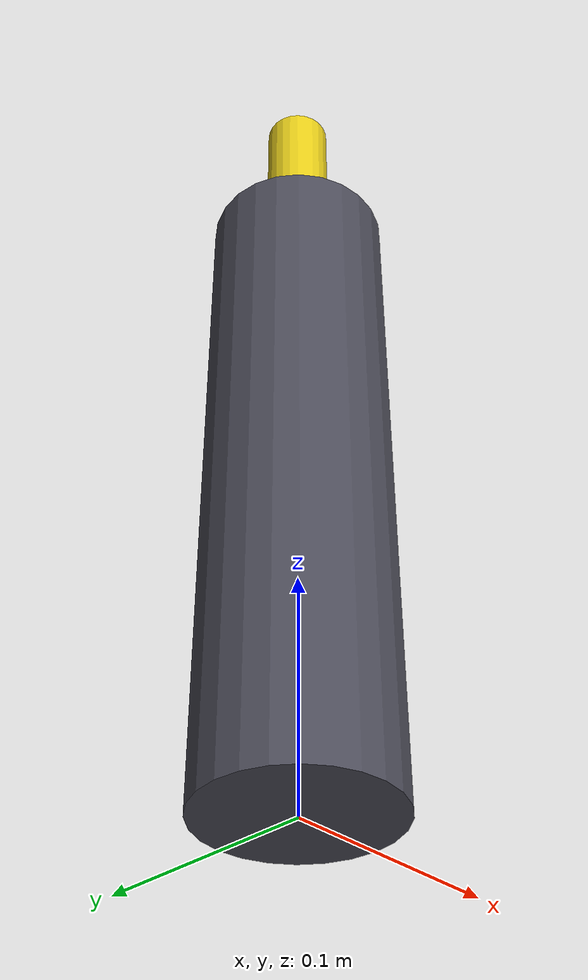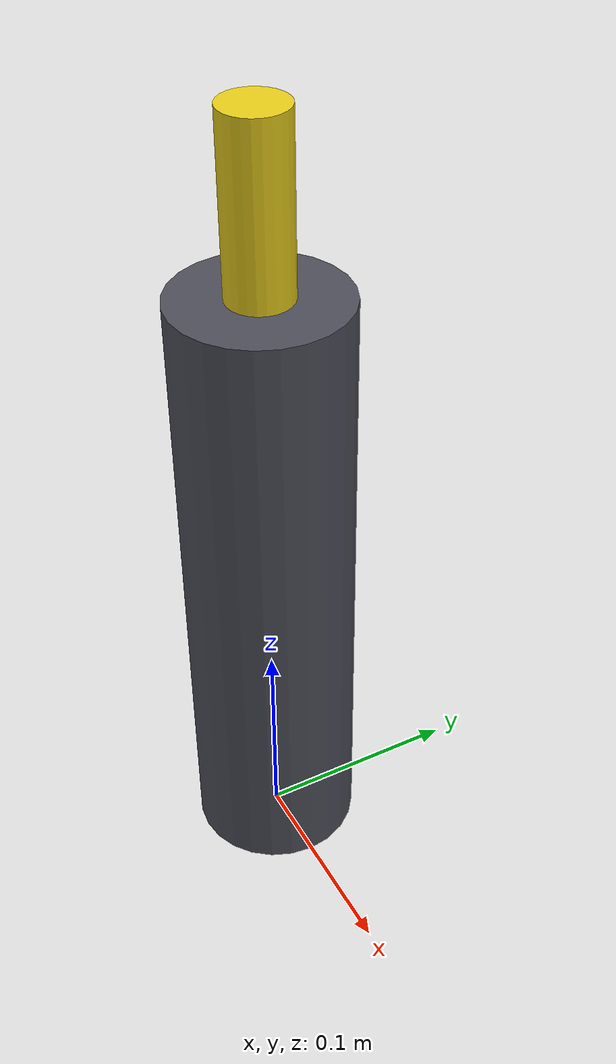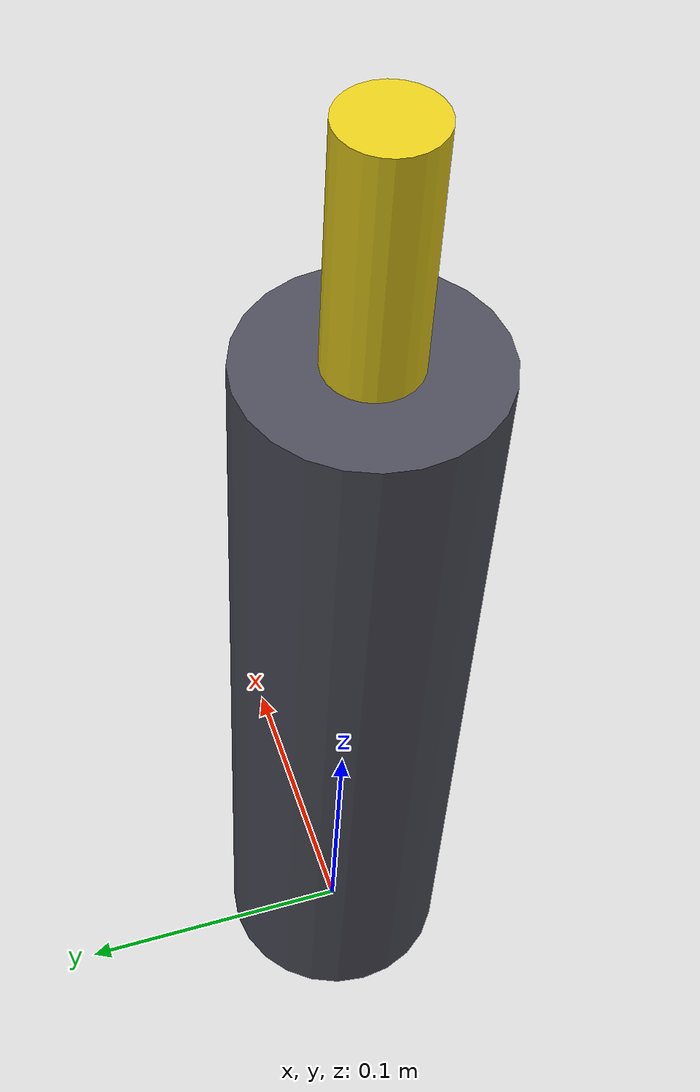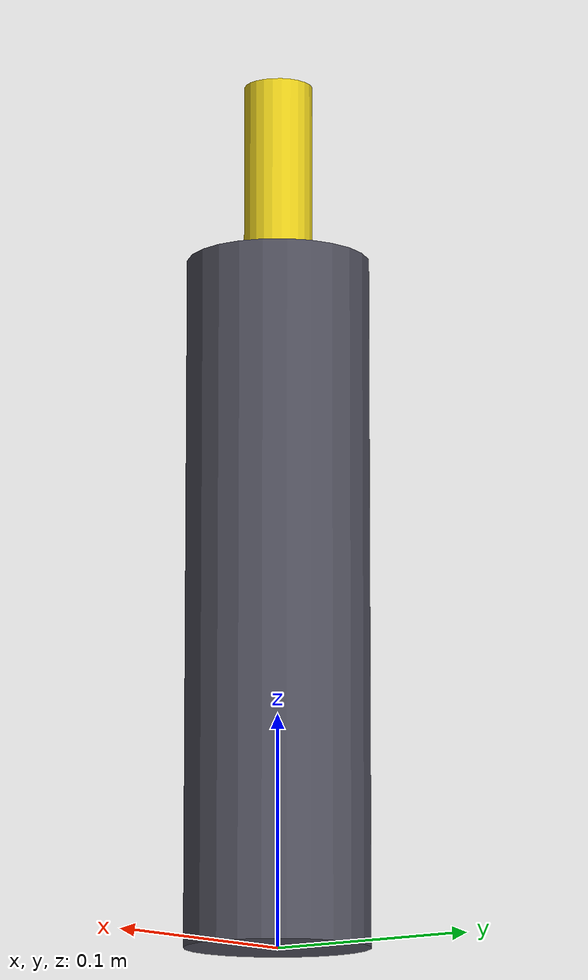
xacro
<?xml version="1.0"?>
<robot xmlns:xacro="http://www.ros.org/wiki/xacro" name="water_gun">

  <!-- 水枪主体 -->
  <link name="water_gun_body">
    <visual>
      <geometry>
        <cylinder radius="0.04" length="0.30"/>
      </geometry>
      <origin xyz="0 0 0.15" rpy="0 0 0"/>
      <material name="gun_metal">
        <color rgba="0.3 0.3 0.35 1.0"/>
      </material>
    </visual>

    <collision>
      <geometry>
        <cylinder radius="0.04" length="0.30"/>
      </geometry>
      <origin xyz="0 0 0.15" rpy="0 0 0"/>
    </collision>

    <inertial>
      <mass value="2.5"/>
      <origin xyz="0 0 0.15" rpy="0 0 0"/>
      <inertia ixx="0.02" ixy="0.0" ixz="0.0"
               iyy="0.02" iyz="0.0" izz="0.001"/>
    </inertial>
  </link>

  <!-- 喷嘴 -->
  <link name="nozzle">
    <visual>
      <geometry>
        <cylinder radius="0.015" length="0.08"/>
      </geometry>
      <origin xyz="0 0 0.04" rpy="0 0 0"/>
      <material name="nozzle_yellow">
        <color rgba="0.9 0.8 0.1 1.0"/>
      </material>
    </visual>

    <collision>
      <geometry>
        <cylinder radius="0.015" length="0.08"/>
      </geometry>
      <origin xyz="0 0 0.04" rpy="0 0 0"/>
    </collision>

    <inertial>
      <mass value="0.2"/>
      <origin xyz="0 0 0.04" rpy="0 0 0"/>
      <inertia ixx="0.0001" ixy="0" ixz="0"
               iyy="0.0001" iyz="0" izz="0.00005"/>
    </inertial>
  </link>

  <joint name="body_to_nozzle" type="fixed">
    <parent link="water_gun_body"/>
    <child link="nozzle"/>
    <origin xyz="0 0 0.30" rpy="0 0 0"/>
  </joint>

  <!-- TCP (Tool Center Point) - 虚拟链接，喷射参考点 -->
  <link name="tcp"/>

  <joint name="nozzle_to_tcp" type="fixed">
    <parent link="nozzle"/>
    <child link="tcp"/>
    <origin xyz="0 0 0.13" rpy="0 0 0"/>  <!-- 喷嘴尖端前 5cm -->
  </joint>

  <!-- 相机安装点 -->
  <link name="camera_mount"/>

  <joint name="body_to_camera_mount" type="fixed">
    <parent link="water_gun_body"/>
    <child link="camera_mount"/>
    <origin xyz="0.08 0 0.20" rpy="0 0 0"/>  <!-- 侧面偏移 -->
  </joint>

</robot>
